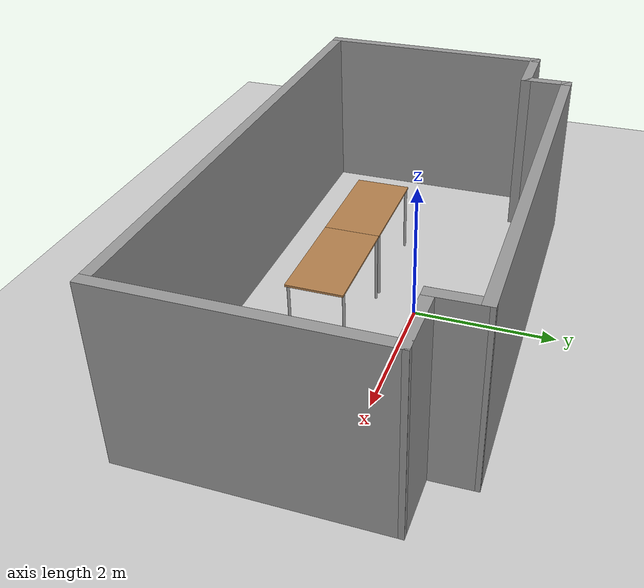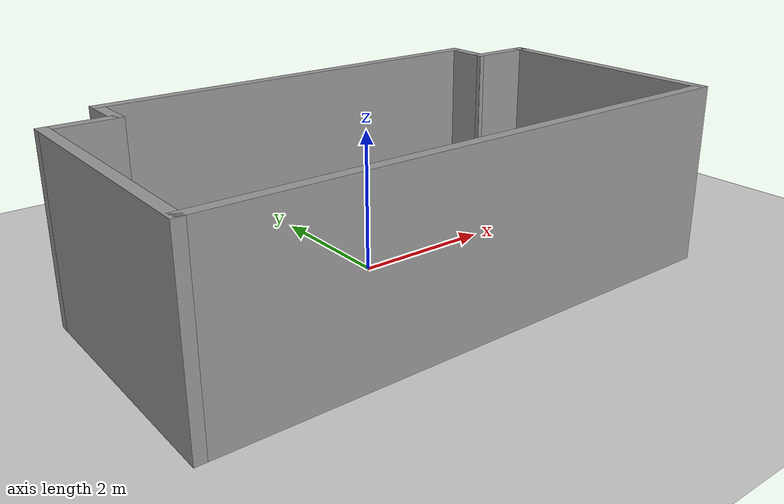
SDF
<sdf version="1.7">
 <world name="default">
  <light name="sun" type="directional">
   <pose>0 0 10 0 -0 0</pose>
   <diffuse>0.8 0.8 0.8 1</diffuse>
   <specular>0.2 0.2 0.2 1</specular>
   <attenuation>
    <range>1000</range>
    <constant>0.9</constant>
    <linear>0.01</linear>
    <quadratic>0.001</quadratic>
   </attenuation>
   <direction>-0.5 0.1 -0.9</direction>
   <spot><inner_angle>0</inner_angle><outer_angle>0</outer_angle><falloff>0</falloff></spot>
  </light>
  <model name="ground_plane">
   <static>1</static>
   <link name="link">
    <collision name="collision">
     <geometry><plane><normal>0 0 1</normal><size>100 100</size></plane></geometry>
     <surface>
      <contact><collide_bitmask>65535</collide_bitmask></contact>
      <friction><ode><mu>100</mu><mu2>50</mu2></ode></friction>
     </surface>
    </collision>
    <visual name="visual">
     <cast_shadows>0</cast_shadows>
     <geometry><plane><normal>0 0 1</normal><size>100 100</size></plane></geometry>
     <material>
      <script><uri>file://media/materials/scripts/gazebo.material</uri><name>Gazebo/Grey</name></script>
     </material>
    </visual>
   </link>
  </model>
  <gravity>0 0 -9.8</gravity>
  <magnetic_field>6e-06 2.3e-05 -4.2e-05</magnetic_field>
  <atmosphere type="adiabatic"/>
  <physics type="ode">
   <max_step_size>0.001</max_step_size>
   <real_time_factor>1</real_time_factor>
   <real_time_update_rate>1000</real_time_update_rate>
  </physics>
  <scene><ambient>0.4 0.4 0.4 1</ambient><background>0.7 0.7 0.7 1</background><shadows>1</shadows></scene>
  <spherical_coordinates>
   <surface_model>EARTH_WGS84</surface_model>
   <latitude_deg>0</latitude_deg>
   <longitude_deg>0</longitude_deg>
   <elevation>0</elevation>
   <heading_deg>0</heading_deg>
  </spherical_coordinates>
  <model name="306room">
   <pose>-0.05854 -0.485319 0 0 -0 0</pose>
   <link name="Wall_14">
    <collision name="Wall_14_Collision">
     <geometry><box><size>1 0.15 2.5</size></box></geometry>
     <pose>0 0 1.25 0 -0 0</pose>
    </collision>
    <visual name="Wall_14_Visual">
     <pose>0 0 1.25 0 -0 0</pose>
     <geometry><box><size>1 0.15 2.5</size></box></geometry>
     <material>
      <script><uri>file://media/materials/scripts/gazebo.material</uri><name>Gazebo/Grey</name></script>
      <ambient>1 1 1 1</ambient>
     </material>
     <meta><layer>0</layer></meta>
    </visual>
    <pose>3.34954 1.36882 0 0 -0 3.12865</pose>
   </link>
   <link name="Wall_15">
    <collision name="Wall_15_Collision">
     <geometry><box><size>0.7501 0.15 2.5</size></box></geometry>
     <pose>0 0 1.25 0 -0 0</pose>
    </collision>
    <visual name="Wall_15_Visual">
     <pose>0 0 1.25 0 -0 0</pose>
     <geometry><box><size>0.7501 0.15 2.5</size></box></geometry>
     <material>
      <script><uri>file://media/materials/scripts/gazebo.material</uri><name>Gazebo/Grey</name></script>
      <ambient>1 1 1 1</ambient>
     </material>
     <meta><layer>0</layer></meta>
    </visual>
    <pose>2.91904 1.67432 0 0 -0 1.58913</pose>
   </link>
   <link name="Wall_16">
    <collision name="Wall_16_Collision">
     <geometry><box><size>5.9885 0.15 2.5</size></box></geometry>
     <pose>0 0 1.25 0 -0 0</pose>
    </collision>
    <visual name="Wall_16_Visual">
     <pose>0 0 1.25 0 -0 0</pose>
     <geometry><box><size>5.9885 0.15 2.5</size></box></geometry>
     <material>
      <script><uri>file://media/materials/scripts/gazebo.material</uri><name>Gazebo/Grey</name></script>
      <ambient>1 1 1 1</ambient>
     </material>
     <meta><layer>0</layer></meta>
    </visual>
    <pose>-0.005964 1.97432 0 0 -0 3.14159</pose>
   </link>
   <link name="Wall_17">
    <collision name="Wall_17_Collision">
     <geometry><box><size>0.75 0.15 2.5</size></box></geometry>
     <pose>0 0 1.25 0 -0 0</pose>
    </collision>
    <visual name="Wall_17_Visual">
     <pose>0 0 1.25 0 -0 0</pose>
     <geometry><box><size>0.75 0.15 2.5</size></box></geometry>
     <material>
      <script><uri>file://media/materials/scripts/gazebo.material</uri><name>Gazebo/Grey</name></script>
      <ambient>1 1 1 1</ambient>
     </material>
     <meta><layer>0</layer></meta>
    </visual>
    <pose>-2.92546 1.67432 0 0 -0 -1.5708</pose>
   </link>
   <link name="Wall_18">
    <collision name="Wall_18_Collision">
     <geometry><box><size>1 0.15 2.5</size></box></geometry>
     <pose>0 0 1.25 0 -0 0</pose>
    </collision>
    <visual name="Wall_18_Visual">
     <pose>0 0 1.25 0 -0 0</pose>
     <geometry><box><size>1 0.15 2.5</size></box></geometry>
     <material>
      <script><uri>file://media/materials/scripts/gazebo.material</uri><name>Gazebo/Grey</name></script>
      <ambient>1 1 1 1</ambient>
     </material>
     <meta><layer>0</layer></meta>
    </visual>
    <pose>-3.35046 1.37432 0 0 -0 3.14159</pose>
   </link>
   <link name="Wall_19">
    <collision name="Wall_19_Collision">
     <geometry><box><size>3.5 0.15 2.5</size></box></geometry>
     <pose>0 0 1.25 0 -0 0</pose>
    </collision>
    <visual name="Wall_19_Visual">
     <pose>0 0 1.25 0 -0 0</pose>
     <geometry><box><size>3.5 0.15 2.5</size></box></geometry>
     <material>
      <script><uri>file://media/materials/scripts/gazebo.material</uri><name>Gazebo/Grey</name></script>
      <ambient>1 1 1 1</ambient>
     </material>
     <meta><layer>0</layer></meta>
    </visual>
    <pose>-3.77546 -0.300681 0 0 -0 -1.5708</pose>
   </link>
   <link name="Wall_20">
    <collision name="Wall_20_Collision">
     <geometry><box><size>7.7 0.15 2.5</size></box></geometry>
     <pose>0 0 1.25 0 -0 0</pose>
    </collision>
    <visual name="Wall_20_Visual">
     <pose>0 0 1.25 0 -0 0</pose>
     <geometry><box><size>7.7 0.15 2.5</size></box></geometry>
     <material>
      <script><uri>file://media/materials/scripts/gazebo.material</uri><name>Gazebo/Grey</name></script>
      <ambient>1 1 1 1</ambient>
     </material>
     <meta><layer>0</layer></meta>
    </visual>
    <pose>-0.000464 -1.97568 0 0 -0 0</pose>
   </link>
   <link name="Wall_21">
    <collision name="Wall_21_Collision">
     <geometry><box><size>3.48892 0.15 2.5</size></box></geometry>
     <pose>0 0 1.25 0 -0 0</pose>
    </collision>
    <visual name="Wall_21_Visual">
     <pose>0 0 1.25 0 -0 0</pose>
     <geometry><box><size>3.48892 0.15 2.5</size></box></geometry>
     <material>
      <script><uri>file://media/materials/scripts/gazebo.material</uri><name>Gazebo/Grey</name></script>
      <ambient>1 1 1 1</ambient>
     </material>
     <meta><layer>0</layer></meta>
    </visual>
    <pose>3.77454 -0.306181 0 0 -0 1.5708</pose>
   </link>
   <static>1</static>
  </model>
  <model name="table">
   <static>1</static>
   <link name="link">
    <collision name="surface">
     <pose>0 0 1 0 -0 0</pose>
     <geometry><box><size>1.5 0.8 0.03</size></box></geometry>
     <surface><friction><ode><mu>0.6</mu><mu2>0.6</mu2></ode></friction></surface>
    </collision>
    <visual name="visual1">
     <pose>0 0 1 0 -0 0</pose>
     <geometry><box><size>1.5 0.8 0.03</size></box></geometry>
     <material>
      <script><uri>file://media/materials/scripts/gazebo.material</uri><name>Gazebo/Wood</name></script>
     </material>
    </visual>
    <collision name="front_left_leg">
     <pose>0.68 0.38 0.5 0 -0 0</pose>
     <geometry><cylinder><radius>0.02</radius><length>1</length></cylinder></geometry>
    </collision>
    <visual name="front_left_leg">
     <pose>0.68 0.38 0.5 0 -0 0</pose>
     <geometry><cylinder><radius>0.02</radius><length>1</length></cylinder></geometry>
     <material>
      <script><uri>file://media/materials/scripts/gazebo.material</uri><name>Gazebo/Grey</name></script>
     </material>
    </visual>
    <collision name="front_right_leg">
     <pose>0.68 -0.38 0.5 0 -0 0</pose>
     <geometry><cylinder><radius>0.02</radius><length>1</length></cylinder></geometry>
    </collision>
    <visual name="front_right_leg">
     <pose>0.68 -0.38 0.5 0 -0 0</pose>
     <geometry><cylinder><radius>0.02</radius><length>1</length></cylinder></geometry>
     <material>
      <script><uri>file://media/materials/scripts/gazebo.material</uri><name>Gazebo/Grey</name></script>
     </material>
    </visual>
    <collision name="back_right_leg">
     <pose>-0.68 -0.38 0.5 0 -0 0</pose>
     <geometry><cylinder><radius>0.02</radius><length>1</length></cylinder></geometry>
    </collision>
    <visual name="back_right_leg">
     <pose>-0.68 -0.38 0.5 0 -0 0</pose>
     <geometry><cylinder><radius>0.02</radius><length>1</length></cylinder></geometry>
     <material>
      <script><uri>file://media/materials/scripts/gazebo.material</uri><name>Gazebo/Grey</name></script>
     </material>
    </visual>
    <collision name="back_left_leg">
     <pose>-0.68 0.38 0.5 0 -0 0</pose>
     <geometry><cylinder><radius>0.02</radius><length>1</length></cylinder></geometry>
    </collision>
    <visual name="back_left_leg">
     <pose>-0.68 0.38 0.5 0 -0 0</pose>
     <geometry><cylinder><radius>0.02</radius><length>1</length></cylinder></geometry>
     <material>
      <script><uri>file://media/materials/scripts/gazebo.material</uri><name>Gazebo/Grey</name></script>
     </material>
    </visual>
   </link>
   <pose>-1 -1 0 0 -0 0</pose>
  </model>
  <model name="table_0">
   <static>1</static>
   <link name="link">
    <collision name="surface">
     <pose>0 0 1 0 -0 0</pose>
     <geometry><box><size>1.5 0.8 0.03</size></box></geometry>
     <surface><friction><ode><mu>0.6</mu><mu2>0.6</mu2></ode></friction></surface>
    </collision>
    <visual name="visual1">
     <pose>0 0 1 0 -0 0</pose>
     <geometry><box><size>1.5 0.8 0.03</size></box></geometry>
     <material>
      <script><uri>file://media/materials/scripts/gazebo.material</uri><name>Gazebo/Wood</name></script>
     </material>
    </visual>
    <collision name="front_left_leg">
     <pose>0.68 0.38 0.5 0 -0 0</pose>
     <geometry><cylinder><radius>0.02</radius><length>1</length></cylinder></geometry>
    </collision>
    <visual name="front_left_leg">
     <pose>0.68 0.38 0.5 0 -0 0</pose>
     <geometry><cylinder><radius>0.02</radius><length>1</length></cylinder></geometry>
     <material>
      <script><uri>file://media/materials/scripts/gazebo.material</uri><name>Gazebo/Grey</name></script>
     </material>
    </visual>
    <collision name="front_right_leg">
     <pose>0.68 -0.38 0.5 0 -0 0</pose>
     <geometry><cylinder><radius>0.02</radius><length>1</length></cylinder></geometry>
    </collision>
    <visual name="front_right_leg">
     <pose>0.68 -0.38 0.5 0 -0 0</pose>
     <geometry><cylinder><radius>0.02</radius><length>1</length></cylinder></geometry>
     <material>
      <script><uri>file://media/materials/scripts/gazebo.material</uri><name>Gazebo/Grey</name></script>
     </material>
    </visual>
    <collision name="back_right_leg">
     <pose>-0.68 -0.38 0.5 0 -0 0</pose>
     <geometry><cylinder><radius>0.02</radius><length>1</length></cylinder></geometry>
    </collision>
    <visual name="back_right_leg">
     <pose>-0.68 -0.38 0.5 0 -0 0</pose>
     <geometry><cylinder><radius>0.02</radius><length>1</length></cylinder></geometry>
     <material>
      <script><uri>file://media/materials/scripts/gazebo.material</uri><name>Gazebo/Grey</name></script>
     </material>
    </visual>
    <collision name="back_left_leg">
     <pose>-0.68 0.38 0.5 0 -0 0</pose>
     <geometry><cylinder><radius>0.02</radius><length>1</length></cylinder></geometry>
    </collision>
    <visual name="back_left_leg">
     <pose>-0.68 0.38 0.5 0 -0 0</pose>
     <geometry><cylinder><radius>0.02</radius><length>1</length></cylinder></geometry>
     <material>
      <script><uri>file://media/materials/scripts/gazebo.material</uri><name>Gazebo/Grey</name></script>
     </material>
    </visual>
   </link>
   <pose>0.5 -1 0 0 -0 0</pose>
  </model>
 </world>
</sdf>
